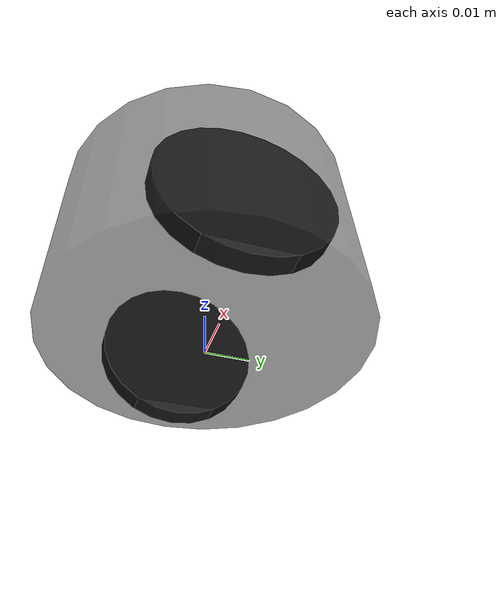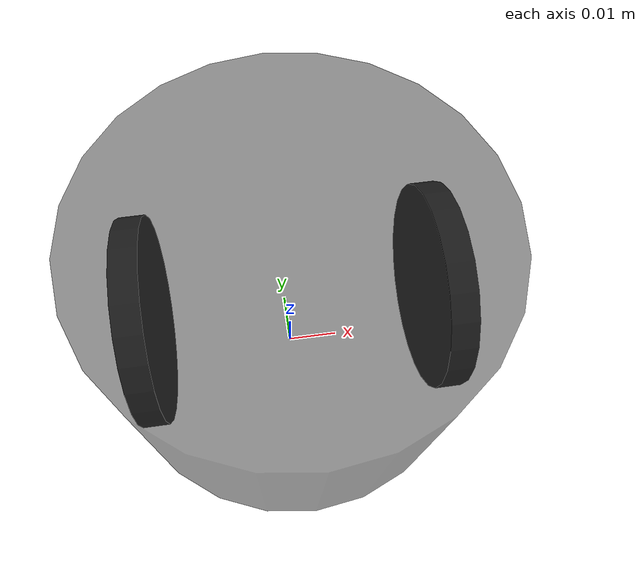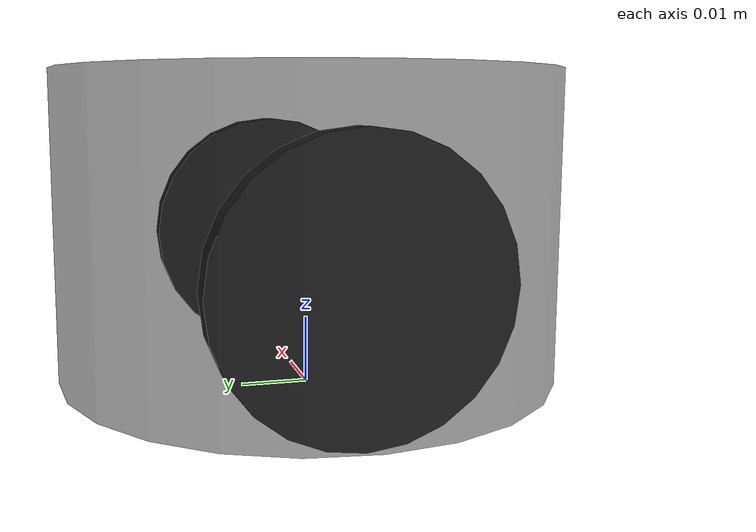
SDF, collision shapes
<?xml version="1.0" ?>
<sdf version="1.5">
  <model name="epuck">
    <link name="base_link">
    <visual name="top_base_visual">
        <geometry>
          <mesh>
            <uri>model://epuck/meshes/top_base.dae</uri>
          </mesh>
        </geometry>
        <material>
          <script>
            <name>Gazebo/BlackTransparent</name>
            <uri>file://media/materials/scripts/gazebo.material</uri>
          </script>
        </material>
      </visual>
      <visual name="body_visual">
        <geometry>
          <mesh>
            <uri>model://epuck/meshes/body.dae</uri>
          </mesh>
        </geometry>
        <material>
          <script>
            <name>Gazebo/Grey</name>
            <uri>file://media/materials/scripts/gazebo.material</uri>
          </script>
        </material>
      </visual>
      <visual name="top_cover_visual">
        <geometry>
          <mesh>
            <uri>model://epuck/meshes/top_cover.dae</uri>
          </mesh>
        </geometry>
         <material>
          <ambient> 0.004 0.127 0.078 0.7</ambient>
          <diffuse> 0.004 0.127 0.078 0.7</diffuse>
          <specular>0.004 0.127 0.078 0.7</specular>
          <emissive>0.004 0.127 0.078 0.7</emissive>
        </material>
       </visual>
      <visual name="top_ring_visual">
        <geometry>
          <mesh>
            <uri>model://epuck/meshes/top_ring.dae</uri>
          </mesh>
        </geometry>
        <material>
          <script>
            <uri>file://media/materials/scripts/gazebo.material</uri>
            <name>Gazebo/GreyTransparent</name>
          </script>
        </material>
      </visual>
      <pose >0 0 0 0 -0 0</pose>
      <inertial>
        <pose >0 0 0.015 0 -0 0</pose>
        <mass>5.063525</mass>
         <inertia>
          <ixx>8.74869e-05</ixx>
          <ixy>0</ixy>
          <ixz>0</ixz>
          <iyy>8.64333e-05</iyy>
          <iyz>0</iyz>
          <izz>9.78585e-05</izz>
        </inertia>
      </inertial>
       <collision name="collision">
       <pose>0 0 0.025 0 0 0</pose>
        <geometry>
           <cylinder>
            <radius>0.037</radius>
            <length>0.045</length>
          </cylinder>
        </geometry>
      </collision>
      <gravity>1</gravity>
      <velocity_decay/>

     <sensor type="ray" name="distanceSensor0">
          <visualize>true</visualize>
          <pose>0.00918 0.0296  0.033 0 0 1.27</pose>
          <update_rate>50</update_rate>
          <ray>
            <scan>
              <horizontal>
                <samples>2</samples>
                <resolution>1.0</resolution>
                <min_angle>-0.1</min_angle>
                <max_angle>0.1</max_angle>
              </horizontal>
            </scan>
            <range>
              <min>0.01</min>
              <max>0.5</max>
              <resolution>0.01</resolution>
            </range>
          </ray>
          <plugin filename="libgazebo_ros_range.so" name="gazebo_ros_range">
            <gaussianNoise>0.005</gaussianNoise>
            <alwaysOn>true</alwaysOn>
            <updateRate>50</updateRate>
            <topicName>distanceSensor0</topicName>
            <frameName>sonar_link</frameName>
            <fov>0.5</fov>
            <radiation>ultrasound</radiation>
          </plugin>
        </sensor>

        <sensor type="ray" name="distanceSensor1">
          <visualize>true</visualize>
          <pose>0.0216 0.022  0.033 0 0 0.77</pose>
          <update_rate>20</update_rate>
          <ray>
            <scan>
              <horizontal>
                <samples>2</samples>
                <resolution>1.0</resolution>
                <min_angle>-0.1</min_angle>
                <max_angle>0.1</max_angle>
              </horizontal>
            </scan>
            <range>
              <min>0.01</min>
              <max>0.5</max>
              <resolution>0.01</resolution>
            </range>
          </ray>

         <plugin filename="libgazebo_ros_range.so" name="gazebo_ros_range">
            <gaussianNoise>0.005</gaussianNoise>
            <alwaysOn>true</alwaysOn>
            <updateRate>50</updateRate>
            <topicName>distanceSensor1</topicName>
            <frameName>sonar_link</frameName>
            <fov>0.5</fov>
            <radiation>ultrasound</radiation>
          </plugin>
        </sensor>

         <sensor type="ray" name="distanceSensor2">
          <visualize>true</visualize>
          <pose>0.031 0 0.033 0 0 0</pose>
          <update_rate>5</update_rate>
          <ray>
            <scan>
              <horizontal>
                <samples>2</samples>
                <resolution>1.0</resolution>
                <min_angle>-0.1</min_angle>
                <max_angle>0.1</max_angle>
              </horizontal>
            </scan>
            <range>
              <min>0.01</min>
              <max>0.5</max>
              <resolution>0.01</resolution>
            </range>
          </ray>
          <plugin filename="libgazebo_ros_range.so" name="gazebo_ros_range">
            <alwaysOn>true</alwaysOn>
            <updateRate>50</updateRate>
            <topicName>distanceSensor2</topicName>
            <frameName>sonar_link</frameName>
            <fov>0.5</fov>
            <radiation>ultrasound</radiation>
          </plugin>
        </sensor>

        <sensor type="ray" name="distanceSensor5">
          <visualize>true</visualize>
          <pose>-0.031 0 0.033 0 0 3.14159</pose>
          <update_rate>5</update_rate>
          <ray>
            <scan>
              <horizontal>
                <samples>2</samples>
                <resolution>1.0</resolution>
                <min_angle>-0.1</min_angle>
                <max_angle>0.1</max_angle>
              </horizontal>

            </scan>
            <range>
              <min>0.01</min>
              <max>0.5</max>
              <resolution>0.01</resolution>
            </range>
          </ray>
          <plugin filename="libgazebo_ros_range.so" name="gazebo_ros_range">
            <alwaysOn>true</alwaysOn>
            <updateRate>2</updateRate>
            <topicName>distanceSensor5</topicName>
            <frameName>sonar_link</frameName>
            <fov>0.5</fov>
            <radiation>ultrasound</radiation>
          </plugin>
        </sensor>

        <sensor type="ray" name="distanceSensor6">
          <visualize>true</visualize>
          <pose>-0.0222 0.0217 0.033 0 0 2.37</pose>
          <update_rate>5</update_rate>
          <ray>
            <scan>
              <horizontal>
                <samples>2</samples>
                <resolution>1.0</resolution>
                <min_angle>-0.1</min_angle>
                <max_angle>0.1</max_angle>
              </horizontal>
            </scan>
            <range>
              <min>0.01</min>
              <max>0.5</max>
              <resolution>0.01</resolution>
            </range>
          </ray>
          <plugin filename="libgazebo_ros_range.so" name="gazebo_ros_range">
            <gaussianNoise>0.005</gaussianNoise>
            <alwaysOn>true</alwaysOn>
            <updateRate>50</updateRate>
            <topicName>distanceSensor6</topicName>
            <frameName>sonar_link</frameName>
            <fov>0.5</fov>
            <radiation>ultrasound</radiation>
          </plugin>
        </sensor>

        <sensor type="ray" name="distanceSensor7">
          <visualize>true</visualize>
          <pose>-0.00914 0.0296 0.033 0 0 1.87</pose>
          <update_rate>5</update_rate>
          <ray>
            <scan>
              <horizontal>
                <samples>2</samples>
                <resolution>1.0</resolution>
                <min_angle>-0.1</min_angle>
                <max_angle>0.1</max_angle>
              </horizontal>
            </scan>
            <range>
              <min>0.01</min>
              <max>0.5</max>
              <resolution>0.01</resolution>
            </range>
          </ray>
          <plugin filename="libgazebo_ros_range.so" name="gazebo_ros_range">
            <gaussianNoise>0.005</gaussianNoise>
            <alwaysOn>true</alwaysOn>
            <updateRate>50</updateRate>
            <topicName>distanceSensor7</topicName>
            <frameName>sonar_link</frameName>
            <fov>0.5</fov>
            <radiation>ultrasound</radiation>
          </plugin>
        </sensor>
    </link>

    <link name="left_wheel">
      <pose>0.0278 0 0.02 0 -0 0</pose>
      <inertial>
        <pose>-0.0005 -0 0 0 -0 0</pose>
        <mass>0.0040981</mass>
      <inertia>
          <ixx>8.267e-07</ixx>
          <ixy>-9.8761e-23</ixy>
          <ixz>-8.6429e-13</ixz>
          <iyy>4.304e-07</iyy>
          <iyz>-2.3376e-22</iyz>
          <izz>4.304e-07</izz>
        </inertia>
      </inertial>
   <collision name="left_wheel_collision">
       <pose>0 0 0 0 1.57 0</pose>
        <geometry>
           <cylinder>
            <radius>0.02</radius>
            <length>0.005</length>
          </cylinder>
        </geometry>
      </collision>

      <visual name="left_wheel_visual">
        <pose>0 0 0 0 -0 0</pose>
        <geometry>
          <mesh>
            <scale>1 1 1</scale>
            <uri>model://epuck/meshes/left_wheel.dae</uri>
          </mesh>
        </geometry>
        <material>
          <script>
            <name>Gazebo/Black</name>
            <uri>file://media/materials/scripts/gazebo.material</uri>
          </script>
        </material>
      </visual>
      <gravity>1</gravity>
      <velocity_decay/>
      <self_collide>1</self_collide>
    </link>
    <joint name="left_joint" type="revolute">
      <child>left_wheel</child>
      <parent>base_link</parent>
      <axis>
        <xyz>-1 0 0</xyz>
        <limit>
          <lower>-1e+16</lower>
          <upper>1e+16</upper>
        </limit>
        <dynamics>
          <spring_reference>0</spring_reference>
          <spring_stiffness>0</spring_stiffness>
        </dynamics>
        <use_parent_model_frame>1</use_parent_model_frame>
      </axis>
    </joint>
    <link name="right_wheel">
      <pose>-0.0278 0 0.02 0 -0 0</pose>
      <inertial>
        <pose>0.000651 0 0 0 -0 0</pose>
        <mass>0.005</mass>
      <inertia>
          <ixx>8.2274e-07</ixx>
          <ixy>-1.0753e-22</ixy>
          <ixz>8.6429e-13</ixz>
          <iyy>4.2585e-07</iyy>
          <iyz>2.3307e-22</iyz>
          <izz>4.2585e-07</izz>
        </inertia>
      </inertial>
      <collision name="left_wheel_collision">
       <pose>0 0 0 0 1.57 0</pose>
        <geometry>
           <cylinder>
            <radius>0.02</radius>
            <length>0.005</length>
          </cylinder>
        </geometry>
      </collision>
      <visual name="right_wheel_visual">
        <pose>0 0 0 0 0 0</pose>
        <geometry>
          <mesh>
            <scale>1 1 1</scale>
            <uri>model://epuck/meshes/right_wheel.dae</uri>
          </mesh>
        </geometry>
        <material>
          <script>
            <name>Gazebo/Black</name>
            <uri>file://media/materials/scripts/gazebo.material</uri>
          </script>
        </material>
      </visual>
      <gravity>1</gravity>
      <velocity_decay/>
      <self_collide>1</self_collide>
    </link>
    <joint name="right_joint" type="revolute">
      <child>right_wheel</child>
      <parent>base_link</parent>
      <axis>
        <xyz>-1 0 0</xyz>
        <limit>
          <lower>-1e+16</lower>
          <upper>1e+16</upper>
        </limit>
        <dynamics>
          <spring_reference>0</spring_reference>
          <spring_stiffness>0</spring_stiffness>
        </dynamics>
        <use_parent_model_frame>1</use_parent_model_frame>
      </axis>
    </joint>

 <plugin name='differential_drive_controller' filename='libgazebo_ros_diff_drive.so'>
      <legacyMode>false</legacyMode>
      <alwaysOn>true</alwaysOn>
      <updateRate>100</updateRate>
      <leftJoint>left_joint</leftJoint>
      <rightJoint>right_joint</rightJoint>
      <wheelSeparation>0.053</wheelSeparation>
      <wheelDiameter>0.04</wheelDiameter>
      <torque>50</torque>
      <commandTopic>cmd_vel</commandTopic>
      <odometryTopic>odom</odometryTopic>
      <odometryFrame>odom</odometryFrame>
      <robotBaseFrame>base_link</robotBaseFrame>
    </plugin>
  </model>
</sdf>
